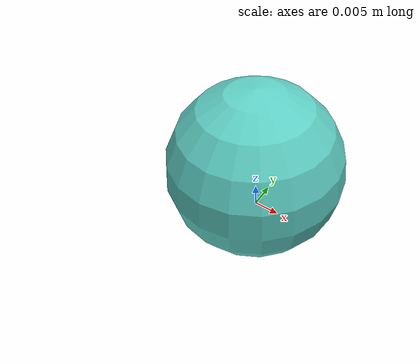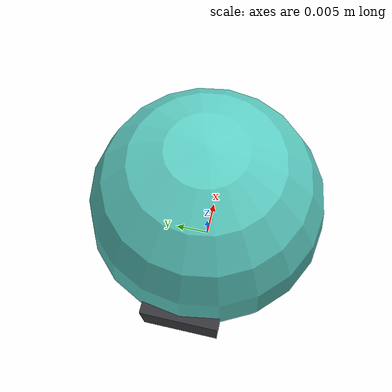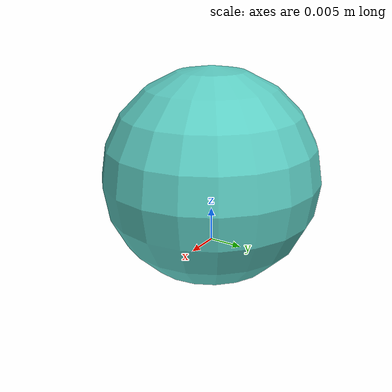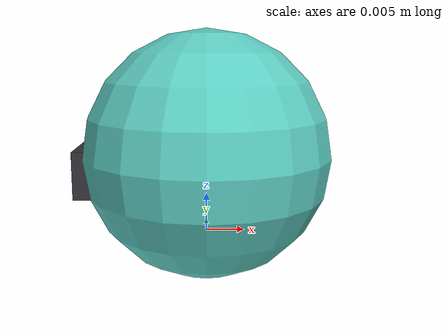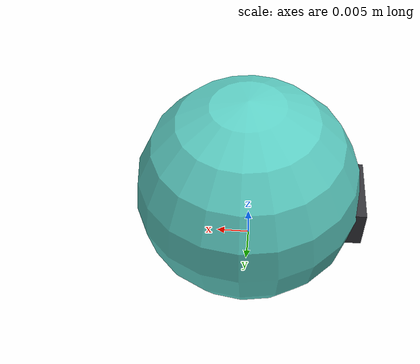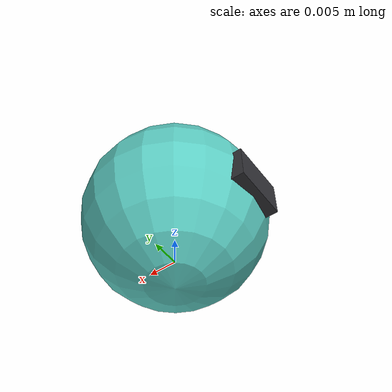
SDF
<?xml version="1.0"?>
<sdf version="1.7">
  <model name="helmet">
    <static>true</static>
    <link name="link">
<visual name="shell"><pose>0 0 0.0104 0 0 0</pose><geometry><sphere><radius>0.0160</radius></sphere></geometry><material><ambient>0.36 0.80 0.76 1</ambient><diffuse>0.36 0.80 0.76 1</diffuse></material></visual>
      <collision name="shell_c"><pose>0 0 0.0104 0 0 0</pose><geometry><sphere><radius>0.0160</radius></sphere></geometry></collision>
      <visual name="brim"><pose>-0.0035 0 0.0084 0 0 0</pose><geometry><box><size>0.0261 0.010 0.006</size></box></geometry><material><ambient>0.20 0.20 0.22 1</ambient><diffuse>0.20 0.20 0.22 1</diffuse></material></visual>
    </link>
  </model>
</sdf>
